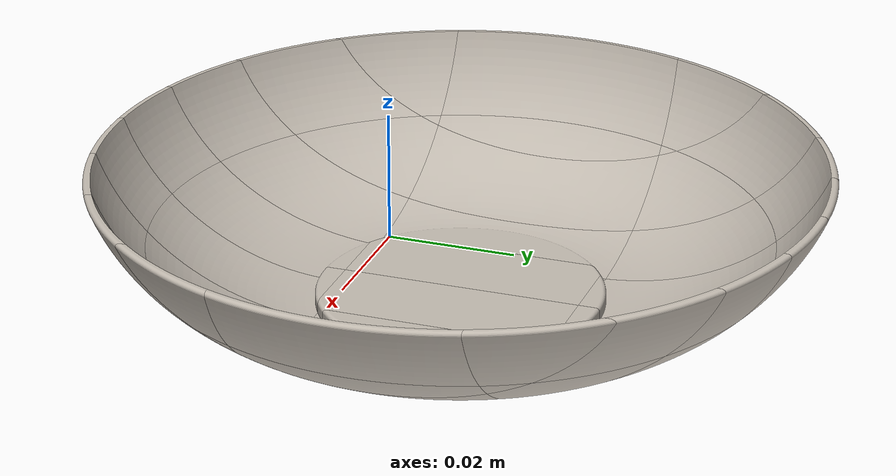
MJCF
<mujoco model="dish1">
  <asset>
    <mesh file="meshes/dish1/Dish1_000.stl" name="dish1_0_mesh" scale="0.9 0.9 0.9"/>
    <mesh file="meshes/dish1/Dish1_001.stl" name="dish1_1_mesh" scale="0.9 0.9 0.9"/>
    <mesh file="meshes/dish1/Dish1_002.stl" name="dish1_2_mesh" scale="0.9 0.9 0.9"/>
    <mesh file="meshes/dish1/Dish1_003.stl" name="dish1_3_mesh" scale="0.9 0.9 0.9"/>
    <mesh file="meshes/dish1/Dish1_004.stl" name="dish1_4_mesh" scale="0.9 0.9 0.9"/>
    <mesh file="meshes/dish1/Dish1_005.stl" name="dish1_5_mesh" scale="0.9 0.9 0.9"/>
    <mesh file="meshes/dish1/Dish1_006.stl" name="dish1_6_mesh" scale="0.9 0.9 0.9"/>
    <mesh file="meshes/dish1/Dish1_007.stl" name="dish1_7_mesh" scale="0.9 0.9 0.9"/>
    <mesh file="meshes/dish1/Dish1_008.stl" name="dish1_8_mesh" scale="0.9 0.9 0.9"/>
    <mesh file="meshes/dish1/Dish1_009.stl" name="dish1_9_mesh" scale="0.9 0.9 0.9"/>
    <mesh file="meshes/dish1/Dish1_010.stl" name="dish1_10_mesh" scale="0.9 0.9 0.9"/>
    <mesh file="meshes/dish1/Dish1_011.stl" name="dish1_11_mesh" scale="0.9 0.9 0.9"/>
    <mesh file="meshes/dish1/Dish1_012.stl" name="dish1_12_mesh" scale="0.9 0.9 0.9"/>
    <mesh file="meshes/dish1/Dish1_013.stl" name="dish1_13_mesh" scale="0.9 0.9 0.9"/>
    <mesh file="meshes/dish1/Dish1_015.stl" name="dish1_14_mesh" scale="0.9 0.9 0.9"/>
    <mesh file="meshes/dish1/Dish1_016.stl" name="dish1_15_mesh" scale="0.9 0.9 0.9"/>
    <mesh file="meshes/dish1/Dish1_017.stl" name="dish1_16_mesh" scale="0.9 0.9 0.9"/>
    <mesh file="meshes/dish1/Dish1_018.stl" name="dish1_17_mesh" scale="0.9 0.9 0.9"/>
    <mesh file="meshes/dish1/Dish1_020.stl" name="dish1_18_mesh" scale="0.9 0.9 0.9"/>
    <mesh file="meshes/dish1/Dish1_021.stl" name="dish1_19_mesh" scale="0.9 0.9 0.9"/>
    <mesh file="meshes/dish1/Dish1_022.stl" name="dish1_20_mesh" scale="0.9 0.9 0.9"/>
    <mesh file="meshes/dish1/Dish1_023.stl" name="dish1_21_mesh" scale="0.9 0.9 0.9"/>
    <mesh file="meshes/dish1/Dish1_025.stl" name="dish1_22_mesh" scale="0.9 0.9 0.9"/>
    <mesh file="meshes/dish1/Dish1_026.stl" name="dish1_23_mesh" scale="0.9 0.9 0.9"/>
    <mesh file="meshes/dish1/Dish1_027.stl" name="dish1_24_mesh" scale="0.9 0.9 0.9"/>
    <mesh file="meshes/dish1/Dish1_028.stl" name="dish1_25_mesh" scale="0.9 0.9 0.9"/>
    <mesh file="meshes/dish1/Dish1_030.stl" name="dish1_26_mesh" scale="0.9 0.9 0.9"/>
    <mesh file="meshes/dish1/Dish1_031.stl" name="dish1_27_mesh" scale="0.9 0.9 0.9"/>
    <mesh file="meshes/dish1/Dish1_032.stl" name="dish1_28_mesh" scale="0.9 0.9 0.9"/>
    <mesh file="meshes/dish1/Dish1_033.stl" name="dish1_29_mesh" scale="0.9 0.9 0.9"/>
    <mesh file="meshes/dish1/Dish1_035.stl" name="dish1_30_mesh" scale="0.9 0.9 0.9"/>
    <mesh file="meshes/dish1/Dish1_036.stl" name="dish1_31_mesh" scale="0.9 0.9 0.9"/>
    <mesh file="meshes/dish1/Dish1_037.stl" name="dish1_32_mesh" scale="0.9 0.9 0.9"/>
    <mesh file="meshes/dish1/Dish1_038.stl" name="dish1_33_mesh" scale="0.9 0.9 0.9"/>
    <mesh file="meshes/dish1/Dish1_040.stl" name="dish1_34_mesh" scale="0.9 0.9 0.9"/>
    <mesh file="meshes/dish1/Dish1_041.stl" name="dish1_35_mesh" scale="0.9 0.9 0.9"/>
    <mesh file="meshes/dish1/Dish1_042.stl" name="dish1_36_mesh" scale="0.9 0.9 0.9"/>
    <mesh file="meshes/dish1/Dish1_043.stl" name="dish1_37_mesh" scale="0.9 0.9 0.9"/>
    <mesh file="meshes/dish1/Dish1_044.stl" name="dish1_38_mesh" scale="0.9 0.9 0.9"/>
    <mesh file="meshes/dish1/Dish1_045.stl" name="dish1_39_mesh" scale="0.9 0.9 0.9"/>
    <mesh file="meshes/dish1/Dish1_046.stl" name="dish1_40_mesh" scale="0.9 0.9 0.9"/>
    <mesh file="meshes/dish1/Dish1_047.stl" name="dish1_41_mesh" scale="0.9 0.9 0.9"/>
    <texture file="../textures/ceramic.png" name="tex-ceramic"/>
    <material name="ceramic" reflectance="0.5" texrepeat="1 1" texture="tex-ceramic" texuniform="true"/>
  </asset>
  <worldbody>
    <body>
      <body name="object">
        <geom pos="0 0 0" mesh="dish1_0_mesh" type="mesh" solimp="0.998 0.998 0.001" solref="0.001 1" density="100" friction="0.95 0.3 0.1" material="ceramic" group="0" condim="3"/>
        <geom pos="0 0 0" mesh="dish1_1_mesh" type="mesh" solimp="0.998 0.998 0.001" solref="0.001 1" density="100" friction="0.95 0.3 0.1" material="ceramic" group="0" condim="3"/>
        <geom pos="0 0 0" mesh="dish1_2_mesh" type="mesh" solimp="0.998 0.998 0.001" solref="0.001 1" density="100" friction="0.95 0.3 0.1" material="ceramic" group="0" condim="3"/>
        <geom pos="0 0 0" mesh="dish1_3_mesh" type="mesh" solimp="0.998 0.998 0.001" solref="0.001 1" density="100" friction="0.95 0.3 0.1" material="ceramic" group="0" condim="3"/>
        <geom pos="0 0 0" mesh="dish1_4_mesh" type="mesh" solimp="0.998 0.998 0.001" solref="0.001 1" density="100" friction="0.95 0.3 0.1" material="ceramic" group="0" condim="3"/>
        <geom pos="0 0 0" mesh="dish1_5_mesh" type="mesh" solimp="0.998 0.998 0.001" solref="0.001 1" density="100" friction="0.95 0.3 0.1" material="ceramic" group="0" condim="3"/>
        <geom pos="0 0 0" mesh="dish1_6_mesh" type="mesh" solimp="0.998 0.998 0.001" solref="0.001 1" density="100" friction="0.95 0.3 0.1" material="ceramic" group="0" condim="3"/>
        <geom pos="0 0 0" mesh="dish1_7_mesh" type="mesh" solimp="0.998 0.998 0.001" solref="0.001 1" density="100" friction="0.95 0.3 0.1" material="ceramic" group="0" condim="3"/>
        <geom pos="0 0 0" mesh="dish1_8_mesh" type="mesh" solimp="0.998 0.998 0.001" solref="0.001 1" density="100" friction="0.95 0.3 0.1" material="ceramic" group="0" condim="3"/>
        <geom pos="0 0 0" mesh="dish1_9_mesh" type="mesh" solimp="0.998 0.998 0.001" solref="0.001 1" density="100" friction="0.95 0.3 0.1" material="ceramic" group="0" condim="3"/>
        <geom pos="0 0 0" mesh="dish1_10_mesh" type="mesh" solimp="0.998 0.998 0.001" solref="0.001 1" density="100" friction="0.95 0.3 0.1" material="ceramic" group="0" condim="3"/>
        <geom pos="0 0 0" mesh="dish1_11_mesh" type="mesh" solimp="0.998 0.998 0.001" solref="0.001 1" density="100" friction="0.95 0.3 0.1" material="ceramic" group="0" condim="3"/>
        <geom pos="0 0 0" mesh="dish1_12_mesh" type="mesh" solimp="0.998 0.998 0.001" solref="0.001 1" density="100" friction="0.95 0.3 0.1" material="ceramic" group="0" condim="3"/>
        <geom pos="0 0 0" mesh="dish1_13_mesh" type="mesh" solimp="0.998 0.998 0.001" solref="0.001 1" density="100" friction="0.95 0.3 0.1" material="ceramic" group="0" condim="3"/>
        <geom pos="0 0 0" mesh="dish1_14_mesh" type="mesh" solimp="0.998 0.998 0.001" solref="0.001 1" density="100" friction="0.95 0.3 0.1" material="ceramic" group="0" condim="3"/>
        <geom pos="0 0 0" mesh="dish1_15_mesh" type="mesh" solimp="0.998 0.998 0.001" solref="0.001 1" density="100" friction="0.95 0.3 0.1" material="ceramic" group="0" condim="3"/>
        <geom pos="0 0 0" mesh="dish1_16_mesh" type="mesh" solimp="0.998 0.998 0.001" solref="0.001 1" density="100" friction="0.95 0.3 0.1" material="ceramic" group="0" condim="3"/>
        <geom pos="0 0 0" mesh="dish1_17_mesh" type="mesh" solimp="0.998 0.998 0.001" solref="0.001 1" density="100" friction="0.95 0.3 0.1" material="ceramic" group="0" condim="3"/>
        <geom pos="0 0 0" mesh="dish1_18_mesh" type="mesh" solimp="0.998 0.998 0.001" solref="0.001 1" density="100" friction="0.95 0.3 0.1" material="ceramic" group="0" condim="3"/>
        <geom pos="0 0 0" mesh="dish1_19_mesh" type="mesh" solimp="0.998 0.998 0.001" solref="0.001 1" density="100" friction="0.95 0.3 0.1" material="ceramic" group="0" condim="3"/>
        <geom pos="0 0 0" mesh="dish1_20_mesh" type="mesh" solimp="0.998 0.998 0.001" solref="0.001 1" density="100" friction="0.95 0.3 0.1" material="ceramic" group="0" condim="3"/>
        <geom pos="0 0 0" mesh="dish1_21_mesh" type="mesh" solimp="0.998 0.998 0.001" solref="0.001 1" density="100" friction="0.95 0.3 0.1" material="ceramic" group="0" condim="3"/>
        <geom pos="0 0 0" mesh="dish1_22_mesh" type="mesh" solimp="0.998 0.998 0.001" solref="0.001 1" density="100" friction="0.95 0.3 0.1" material="ceramic" group="0" condim="3"/>
        <geom pos="0 0 0" mesh="dish1_23_mesh" type="mesh" solimp="0.998 0.998 0.001" solref="0.001 1" density="100" friction="0.95 0.3 0.1" material="ceramic" group="0" condim="3"/>
        <geom pos="0 0 0" mesh="dish1_24_mesh" type="mesh" solimp="0.998 0.998 0.001" solref="0.001 1" density="100" friction="0.95 0.3 0.1" material="ceramic" group="0" condim="3"/>
        <geom pos="0 0 0" mesh="dish1_25_mesh" type="mesh" solimp="0.998 0.998 0.001" solref="0.001 1" density="100" friction="0.95 0.3 0.1" material="ceramic" group="0" condim="3"/>
        <geom pos="0 0 0" mesh="dish1_26_mesh" type="mesh" solimp="0.998 0.998 0.001" solref="0.001 1" density="100" friction="0.95 0.3 0.1" material="ceramic" group="0" condim="3"/>
        <geom pos="0 0 0" mesh="dish1_27_mesh" type="mesh" solimp="0.998 0.998 0.001" solref="0.001 1" density="100" friction="0.95 0.3 0.1" material="ceramic" group="0" condim="3"/>
        <geom pos="0 0 0" mesh="dish1_28_mesh" type="mesh" solimp="0.998 0.998 0.001" solref="0.001 1" density="100" friction="0.95 0.3 0.1" material="ceramic" group="0" condim="3"/>
        <geom pos="0 0 0" mesh="dish1_29_mesh" type="mesh" solimp="0.998 0.998 0.001" solref="0.001 1" density="100" friction="0.95 0.3 0.1" material="ceramic" group="0" condim="3"/>
        <geom pos="0 0 0" mesh="dish1_30_mesh" type="mesh" solimp="0.998 0.998 0.001" solref="0.001 1" density="100" friction="0.95 0.3 0.1" material="ceramic" group="0" condim="3"/>
        <geom pos="0 0 0" mesh="dish1_31_mesh" type="mesh" solimp="0.998 0.998 0.001" solref="0.001 1" density="100" friction="0.95 0.3 0.1" material="ceramic" group="0" condim="3"/>
        <geom pos="0 0 0" mesh="dish1_32_mesh" type="mesh" solimp="0.998 0.998 0.001" solref="0.001 1" density="100" friction="0.95 0.3 0.1" material="ceramic" group="0" condim="3"/>
        <geom pos="0 0 0" mesh="dish1_33_mesh" type="mesh" solimp="0.998 0.998 0.001" solref="0.001 1" density="100" friction="0.95 0.3 0.1" material="ceramic" group="0" condim="3"/>
        <geom pos="0 0 0" mesh="dish1_34_mesh" type="mesh" solimp="0.998 0.998 0.001" solref="0.001 1" density="100" friction="0.95 0.3 0.1" material="ceramic" group="0" condim="3"/>
        <geom pos="0 0 0" mesh="dish1_35_mesh" type="mesh" solimp="0.998 0.998 0.001" solref="0.001 1" density="100" friction="0.95 0.3 0.1" material="ceramic" group="0" condim="3"/>
        <geom pos="0 0 0" mesh="dish1_36_mesh" type="mesh" solimp="0.998 0.998 0.001" solref="0.001 1" density="100" friction="0.95 0.3 0.1" material="ceramic" group="0" condim="3"/>
        <geom pos="0 0 0" mesh="dish1_37_mesh" type="mesh" solimp="0.998 0.998 0.001" solref="0.001 1" density="100" friction="0.95 0.3 0.1" material="ceramic" group="0" condim="3"/>
        <geom pos="0 0 0" mesh="dish1_38_mesh" type="mesh" solimp="0.998 0.998 0.001" solref="0.001 1" density="100" friction="0.95 0.3 0.1" material="ceramic" group="0" condim="3"/>
        <geom pos="0 0 0" mesh="dish1_39_mesh" type="mesh" solimp="0.998 0.998 0.001" solref="0.001 1" density="100" friction="0.95 0.3 0.1" material="ceramic" group="0" condim="3"/>
        <geom pos="0 0 0" mesh="dish1_40_mesh" type="mesh" solimp="0.998 0.998 0.001" solref="0.001 1" density="100" friction="0.95 0.3 0.1" material="ceramic" group="0" condim="3"/>
        <geom pos="0 0 0" mesh="dish1_41_mesh" type="mesh" solimp="0.998 0.998 0.001" solref="0.001 1" density="100" friction="0.95 0.3 0.1" material="ceramic" group="0" condim="3"/>
      </body>
      <site rgba="0 0 0 0" size="0.005" pos="0 0 -0.065" name="bottom_site"/>
      <site rgba="0 0 0 0" size="0.005" pos="0 0 0.075" name="top_site"/>
      <site rgba="0 0 0 0" size="0.005" pos="0.085 0.025 0" name="horizontal_radius_site"/>
    </body>
  </worldbody>
</mujoco>
